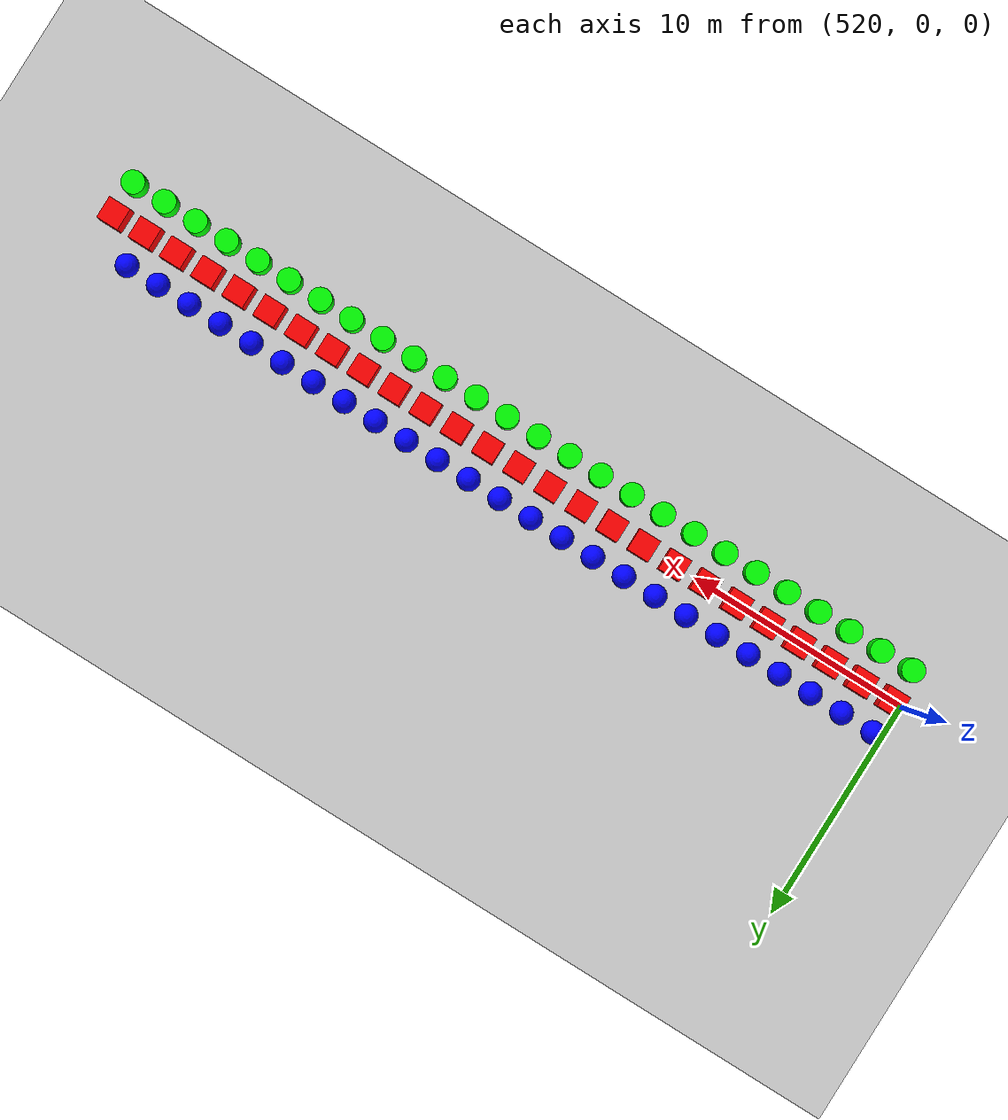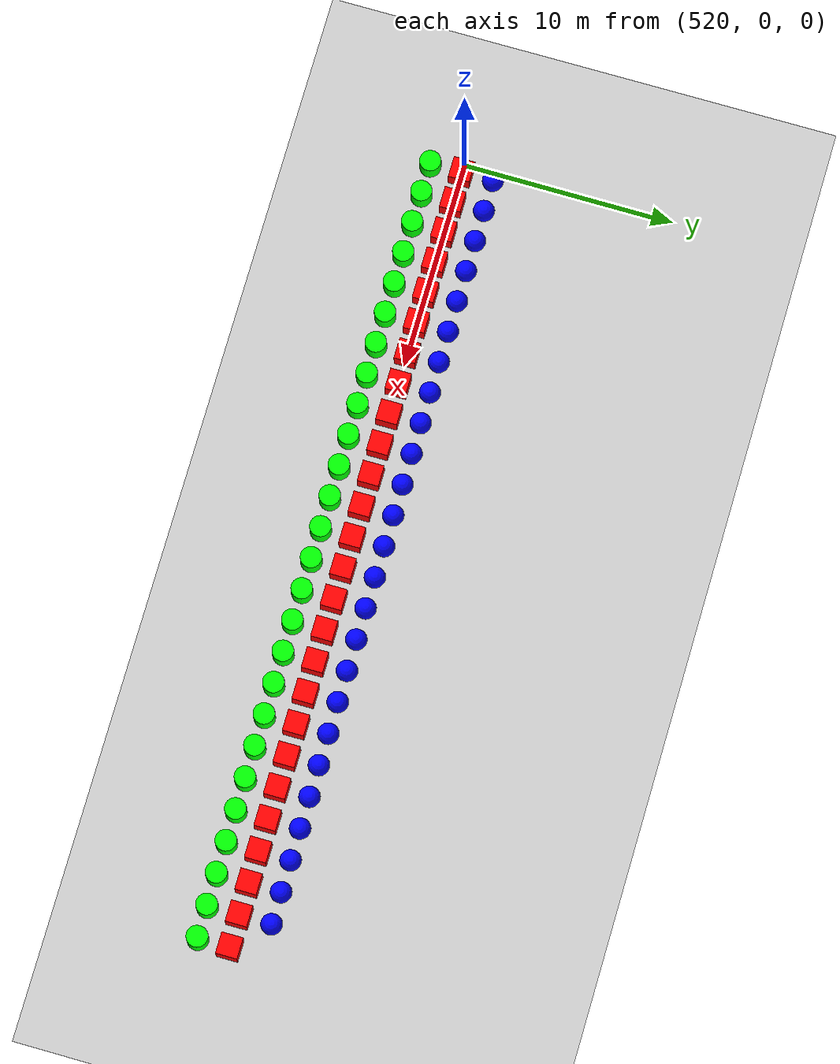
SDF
<sdf version="1.6">
 <world name="shapes">
  <model name="ground_plane">
   <static>true</static>
   <link name="link">
    <collision name="collision">
     <geometry><plane><normal>0 0 1</normal><size>100 100</size></plane></geometry>
    </collision>
    <visual name="visual">
     <geometry><plane><normal>0 0 1</normal><size>100 100</size></plane></geometry>
     <material>
      <ambient>0.8 0.8 0.8 1</ambient>
      <diffuse>0.8 0.8 0.8 1</diffuse>
      <specular>0.8 0.8 0.8 1</specular>
     </material>
    </visual>
   </link>
  </model>
  <model name="box_847">
   <static>false</static>
   <pose>520.5 0 0.5 0 0 0</pose>
   <link name="box_link">
    <inertial>
     <inertia><ixx>1</ixx><ixy>0</ixy><ixz>0</ixz><iyy>1</iyy><iyz>0</iyz><izz>1</izz></inertia>
     <mass>1.0</mass>
    </inertial>
    <collision name="box_collision"><geometry><box><size>1 1 1</size></box></geometry></collision>
    <visual name="box_visual">
     <geometry><box><size>1 1 1</size></box></geometry>
     <material><ambient>1 0 0 1</ambient><diffuse>1 0 0 1</diffuse><specular>1 0 0 1</specular></material>
    </visual>
   </link>
  </model>
  <model name="cylinder_847">
   <static>false</static>
   <pose>520.5 -1.5 0.5 0 0 0</pose>
   <link name="cylinder_link">
    <inertial>
     <inertia><ixx>2</ixx><ixy>0</ixy><ixz>0</ixz><iyy>2</iyy><iyz>0</iyz><izz>2</izz></inertia>
     <mass>2.0</mass>
    </inertial>
    <collision name="cylinder_collision">
     <geometry><cylinder><radius>0.5</radius><length>1.0</length></cylinder></geometry>
    </collision>
    <visual name="cylinder_visual">
     <geometry><cylinder><radius>0.5</radius><length>1.0</length></cylinder></geometry>
     <material><ambient>0 1 0 1</ambient><diffuse>0 1 0 1</diffuse><specular>0 1 0 1</specular></material>
    </visual>
   </link>
  </model>
  <model name="sphere_847">
   <static>false</static>
   <pose>520.5 1.5 0.5 0 0 0</pose>
   <link name="sphere_link">
    <inertial>
     <inertia><ixx>3</ixx><ixy>0</ixy><ixz>0</ixz><iyy>3</iyy><iyz>0</iyz><izz>3</izz></inertia>
     <mass>3.0</mass>
    </inertial>
    <collision name="sphere_collision"><geometry><sphere><radius>0.5</radius></sphere></geometry></collision>
    <visual name="sphere_visual">
     <geometry><sphere><radius>0.5</radius></sphere></geometry>
     <material><ambient>0 0 1 1</ambient><diffuse>0 0 1 1</diffuse><specular>0 0 1 1</specular></material>
    </visual>
   </link>
  </model>
  <model name="box_848">
   <static>false</static>
   <pose>522.0 0 0.5 0 0 0</pose>
   <link name="box_link">
    <inertial>
     <inertia><ixx>1</ixx><ixy>0</ixy><ixz>0</ixz><iyy>1</iyy><iyz>0</iyz><izz>1</izz></inertia>
     <mass>1.0</mass>
    </inertial>
    <collision name="box_collision"><geometry><box><size>1 1 1</size></box></geometry></collision>
    <visual name="box_visual">
     <geometry><box><size>1 1 1</size></box></geometry>
     <material><ambient>1 0 0 1</ambient><diffuse>1 0 0 1</diffuse><specular>1 0 0 1</specular></material>
    </visual>
   </link>
  </model>
  <model name="cylinder_848">
   <static>false</static>
   <pose>522.0 -1.5 0.5 0 0 0</pose>
   <link name="cylinder_link">
    <inertial>
     <inertia><ixx>2</ixx><ixy>0</ixy><ixz>0</ixz><iyy>2</iyy><iyz>0</iyz><izz>2</izz></inertia>
     <mass>2.0</mass>
    </inertial>
    <collision name="cylinder_collision">
     <geometry><cylinder><radius>0.5</radius><length>1.0</length></cylinder></geometry>
    </collision>
    <visual name="cylinder_visual">
     <geometry><cylinder><radius>0.5</radius><length>1.0</length></cylinder></geometry>
     <material><ambient>0 1 0 1</ambient><diffuse>0 1 0 1</diffuse><specular>0 1 0 1</specular></material>
    </visual>
   </link>
  </model>
  <model name="sphere_848">
   <static>false</static>
   <pose>522.0 1.5 0.5 0 0 0</pose>
   <link name="sphere_link">
    <inertial>
     <inertia><ixx>3</ixx><ixy>0</ixy><ixz>0</ixz><iyy>3</iyy><iyz>0</iyz><izz>3</izz></inertia>
     <mass>3.0</mass>
    </inertial>
    <collision name="sphere_collision"><geometry><sphere><radius>0.5</radius></sphere></geometry></collision>
    <visual name="sphere_visual">
     <geometry><sphere><radius>0.5</radius></sphere></geometry>
     <material><ambient>0 0 1 1</ambient><diffuse>0 0 1 1</diffuse><specular>0 0 1 1</specular></material>
    </visual>
   </link>
  </model>
  <model name="box_849">
   <static>false</static>
   <pose>523.5 0 0.5 0 0 0</pose>
   <link name="box_link">
    <inertial>
     <inertia><ixx>1</ixx><ixy>0</ixy><ixz>0</ixz><iyy>1</iyy><iyz>0</iyz><izz>1</izz></inertia>
     <mass>1.0</mass>
    </inertial>
    <collision name="box_collision"><geometry><box><size>1 1 1</size></box></geometry></collision>
    <visual name="box_visual">
     <geometry><box><size>1 1 1</size></box></geometry>
     <material><ambient>1 0 0 1</ambient><diffuse>1 0 0 1</diffuse><specular>1 0 0 1</specular></material>
    </visual>
   </link>
  </model>
  <model name="cylinder_849">
   <static>false</static>
   <pose>523.5 -1.5 0.5 0 0 0</pose>
   <link name="cylinder_link">
    <inertial>
     <inertia><ixx>2</ixx><ixy>0</ixy><ixz>0</ixz><iyy>2</iyy><iyz>0</iyz><izz>2</izz></inertia>
     <mass>2.0</mass>
    </inertial>
    <collision name="cylinder_collision">
     <geometry><cylinder><radius>0.5</radius><length>1.0</length></cylinder></geometry>
    </collision>
    <visual name="cylinder_visual">
     <geometry><cylinder><radius>0.5</radius><length>1.0</length></cylinder></geometry>
     <material><ambient>0 1 0 1</ambient><diffuse>0 1 0 1</diffuse><specular>0 1 0 1</specular></material>
    </visual>
   </link>
  </model>
  <model name="sphere_849">
   <static>false</static>
   <pose>523.5 1.5 0.5 0 0 0</pose>
   <link name="sphere_link">
    <inertial>
     <inertia><ixx>3</ixx><ixy>0</ixy><ixz>0</ixz><iyy>3</iyy><iyz>0</iyz><izz>3</izz></inertia>
     <mass>3.0</mass>
    </inertial>
    <collision name="sphere_collision"><geometry><sphere><radius>0.5</radius></sphere></geometry></collision>
    <visual name="sphere_visual">
     <geometry><sphere><radius>0.5</radius></sphere></geometry>
     <material><ambient>0 0 1 1</ambient><diffuse>0 0 1 1</diffuse><specular>0 0 1 1</specular></material>
    </visual>
   </link>
  </model>
  <model name="box_850">
   <static>false</static>
   <pose>525.0 0 0.5 0 0 0</pose>
   <link name="box_link">
    <inertial>
     <inertia><ixx>1</ixx><ixy>0</ixy><ixz>0</ixz><iyy>1</iyy><iyz>0</iyz><izz>1</izz></inertia>
     <mass>1.0</mass>
    </inertial>
    <collision name="box_collision"><geometry><box><size>1 1 1</size></box></geometry></collision>
    <visual name="box_visual">
     <geometry><box><size>1 1 1</size></box></geometry>
     <material><ambient>1 0 0 1</ambient><diffuse>1 0 0 1</diffuse><specular>1 0 0 1</specular></material>
    </visual>
   </link>
  </model>
  <model name="cylinder_850">
   <static>false</static>
   <pose>525.0 -1.5 0.5 0 0 0</pose>
   <link name="cylinder_link">
    <inertial>
     <inertia><ixx>2</ixx><ixy>0</ixy><ixz>0</ixz><iyy>2</iyy><iyz>0</iyz><izz>2</izz></inertia>
     <mass>2.0</mass>
    </inertial>
    <collision name="cylinder_collision">
     <geometry><cylinder><radius>0.5</radius><length>1.0</length></cylinder></geometry>
    </collision>
    <visual name="cylinder_visual">
     <geometry><cylinder><radius>0.5</radius><length>1.0</length></cylinder></geometry>
     <material><ambient>0 1 0 1</ambient><diffuse>0 1 0 1</diffuse><specular>0 1 0 1</specular></material>
    </visual>
   </link>
  </model>
  <model name="sphere_850">
   <static>false</static>
   <pose>525.0 1.5 0.5 0 0 0</pose>
   <link name="sphere_link">
    <inertial>
     <inertia><ixx>3</ixx><ixy>0</ixy><ixz>0</ixz><iyy>3</iyy><iyz>0</iyz><izz>3</izz></inertia>
     <mass>3.0</mass>
    </inertial>
    <collision name="sphere_collision"><geometry><sphere><radius>0.5</radius></sphere></geometry></collision>
    <visual name="sphere_visual">
     <geometry><sphere><radius>0.5</radius></sphere></geometry>
     <material><ambient>0 0 1 1</ambient><diffuse>0 0 1 1</diffuse><specular>0 0 1 1</specular></material>
    </visual>
   </link>
  </model>
  <model name="box_851">
   <static>false</static>
   <pose>526.5 0 0.5 0 0 0</pose>
   <link name="box_link">
    <inertial>
     <inertia><ixx>1</ixx><ixy>0</ixy><ixz>0</ixz><iyy>1</iyy><iyz>0</iyz><izz>1</izz></inertia>
     <mass>1.0</mass>
    </inertial>
    <collision name="box_collision"><geometry><box><size>1 1 1</size></box></geometry></collision>
    <visual name="box_visual">
     <geometry><box><size>1 1 1</size></box></geometry>
     <material><ambient>1 0 0 1</ambient><diffuse>1 0 0 1</diffuse><specular>1 0 0 1</specular></material>
    </visual>
   </link>
  </model>
  <model name="cylinder_851">
   <static>false</static>
   <pose>526.5 -1.5 0.5 0 0 0</pose>
   <link name="cylinder_link">
    <inertial>
     <inertia><ixx>2</ixx><ixy>0</ixy><ixz>0</ixz><iyy>2</iyy><iyz>0</iyz><izz>2</izz></inertia>
     <mass>2.0</mass>
    </inertial>
    <collision name="cylinder_collision">
     <geometry><cylinder><radius>0.5</radius><length>1.0</length></cylinder></geometry>
    </collision>
    <visual name="cylinder_visual">
     <geometry><cylinder><radius>0.5</radius><length>1.0</length></cylinder></geometry>
     <material><ambient>0 1 0 1</ambient><diffuse>0 1 0 1</diffuse><specular>0 1 0 1</specular></material>
    </visual>
   </link>
  </model>
  <model name="sphere_851">
   <static>false</static>
   <pose>526.5 1.5 0.5 0 0 0</pose>
   <link name="sphere_link">
    <inertial>
     <inertia><ixx>3</ixx><ixy>0</ixy><ixz>0</ixz><iyy>3</iyy><iyz>0</iyz><izz>3</izz></inertia>
     <mass>3.0</mass>
    </inertial>
    <collision name="sphere_collision"><geometry><sphere><radius>0.5</radius></sphere></geometry></collision>
    <visual name="sphere_visual">
     <geometry><sphere><radius>0.5</radius></sphere></geometry>
     <material><ambient>0 0 1 1</ambient><diffuse>0 0 1 1</diffuse><specular>0 0 1 1</specular></material>
    </visual>
   </link>
  </model>
  <model name="box_852">
   <static>false</static>
   <pose>528.0 0 0.5 0 0 0</pose>
   <link name="box_link">
    <inertial>
     <inertia><ixx>1</ixx><ixy>0</ixy><ixz>0</ixz><iyy>1</iyy><iyz>0</iyz><izz>1</izz></inertia>
     <mass>1.0</mass>
    </inertial>
    <collision name="box_collision"><geometry><box><size>1 1 1</size></box></geometry></collision>
    <visual name="box_visual">
     <geometry><box><size>1 1 1</size></box></geometry>
     <material><ambient>1 0 0 1</ambient><diffuse>1 0 0 1</diffuse><specular>1 0 0 1</specular></material>
    </visual>
   </link>
  </model>
  <model name="cylinder_852">
   <static>false</static>
   <pose>528.0 -1.5 0.5 0 0 0</pose>
   <link name="cylinder_link">
    <inertial>
     <inertia><ixx>2</ixx><ixy>0</ixy><ixz>0</ixz><iyy>2</iyy><iyz>0</iyz><izz>2</izz></inertia>
     <mass>2.0</mass>
    </inertial>
    <collision name="cylinder_collision">
     <geometry><cylinder><radius>0.5</radius><length>1.0</length></cylinder></geometry>
    </collision>
    <visual name="cylinder_visual">
     <geometry><cylinder><radius>0.5</radius><length>1.0</length></cylinder></geometry>
     <material><ambient>0 1 0 1</ambient><diffuse>0 1 0 1</diffuse><specular>0 1 0 1</specular></material>
    </visual>
   </link>
  </model>
  <model name="sphere_852">
   <static>false</static>
   <pose>528.0 1.5 0.5 0 0 0</pose>
   <link name="sphere_link">
    <inertial>
     <inertia><ixx>3</ixx><ixy>0</ixy><ixz>0</ixz><iyy>3</iyy><iyz>0</iyz><izz>3</izz></inertia>
     <mass>3.0</mass>
    </inertial>
    <collision name="sphere_collision"><geometry><sphere><radius>0.5</radius></sphere></geometry></collision>
    <visual name="sphere_visual">
     <geometry><sphere><radius>0.5</radius></sphere></geometry>
     <material><ambient>0 0 1 1</ambient><diffuse>0 0 1 1</diffuse><specular>0 0 1 1</specular></material>
    </visual>
   </link>
  </model>
  <model name="box_853">
   <static>false</static>
   <pose>529.5 0 0.5 0 0 0</pose>
   <link name="box_link">
    <inertial>
     <inertia><ixx>1</ixx><ixy>0</ixy><ixz>0</ixz><iyy>1</iyy><iyz>0</iyz><izz>1</izz></inertia>
     <mass>1.0</mass>
    </inertial>
    <collision name="box_collision"><geometry><box><size>1 1 1</size></box></geometry></collision>
    <visual name="box_visual">
     <geometry><box><size>1 1 1</size></box></geometry>
     <material><ambient>1 0 0 1</ambient><diffuse>1 0 0 1</diffuse><specular>1 0 0 1</specular></material>
    </visual>
   </link>
  </model>
  <model name="cylinder_853">
   <static>false</static>
   <pose>529.5 -1.5 0.5 0 0 0</pose>
   <link name="cylinder_link">
    <inertial>
     <inertia><ixx>2</ixx><ixy>0</ixy><ixz>0</ixz><iyy>2</iyy><iyz>0</iyz><izz>2</izz></inertia>
     <mass>2.0</mass>
    </inertial>
    <collision name="cylinder_collision">
     <geometry><cylinder><radius>0.5</radius><length>1.0</length></cylinder></geometry>
    </collision>
    <visual name="cylinder_visual">
     <geometry><cylinder><radius>0.5</radius><length>1.0</length></cylinder></geometry>
     <material><ambient>0 1 0 1</ambient><diffuse>0 1 0 1</diffuse><specular>0 1 0 1</specular></material>
    </visual>
   </link>
  </model>
  <model name="sphere_853">
   <static>false</static>
   <pose>529.5 1.5 0.5 0 0 0</pose>
   <link name="sphere_link">
    <inertial>
     <inertia><ixx>3</ixx><ixy>0</ixy><ixz>0</ixz><iyy>3</iyy><iyz>0</iyz><izz>3</izz></inertia>
     <mass>3.0</mass>
    </inertial>
    <collision name="sphere_collision"><geometry><sphere><radius>0.5</radius></sphere></geometry></collision>
    <visual name="sphere_visual">
     <geometry><sphere><radius>0.5</radius></sphere></geometry>
     <material><ambient>0 0 1 1</ambient><diffuse>0 0 1 1</diffuse><specular>0 0 1 1</specular></material>
    </visual>
   </link>
  </model>
  <model name="box_854">
   <static>false</static>
   <pose>531.0 0 0.5 0 0 0</pose>
   <link name="box_link">
    <inertial>
     <inertia><ixx>1</ixx><ixy>0</ixy><ixz>0</ixz><iyy>1</iyy><iyz>0</iyz><izz>1</izz></inertia>
     <mass>1.0</mass>
    </inertial>
    <collision name="box_collision"><geometry><box><size>1 1 1</size></box></geometry></collision>
    <visual name="box_visual">
     <geometry><box><size>1 1 1</size></box></geometry>
     <material><ambient>1 0 0 1</ambient><diffuse>1 0 0 1</diffuse><specular>1 0 0 1</specular></material>
    </visual>
   </link>
  </model>
  <model name="cylinder_854">
   <static>false</static>
   <pose>531.0 -1.5 0.5 0 0 0</pose>
   <link name="cylinder_link">
    <inertial>
     <inertia><ixx>2</ixx><ixy>0</ixy><ixz>0</ixz><iyy>2</iyy><iyz>0</iyz><izz>2</izz></inertia>
     <mass>2.0</mass>
    </inertial>
    <collision name="cylinder_collision">
     <geometry><cylinder><radius>0.5</radius><length>1.0</length></cylinder></geometry>
    </collision>
    <visual name="cylinder_visual">
     <geometry><cylinder><radius>0.5</radius><length>1.0</length></cylinder></geometry>
     <material><ambient>0 1 0 1</ambient><diffuse>0 1 0 1</diffuse><specular>0 1 0 1</specular></material>
    </visual>
   </link>
  </model>
  <model name="sphere_854">
   <static>false</static>
   <pose>531.0 1.5 0.5 0 0 0</pose>
   <link name="sphere_link">
    <inertial>
     <inertia><ixx>3</ixx><ixy>0</ixy><ixz>0</ixz><iyy>3</iyy><iyz>0</iyz><izz>3</izz></inertia>
     <mass>3.0</mass>
    </inertial>
    <collision name="sphere_collision"><geometry><sphere><radius>0.5</radius></sphere></geometry></collision>
    <visual name="sphere_visual">
     <geometry><sphere><radius>0.5</radius></sphere></geometry>
     <material><ambient>0 0 1 1</ambient><diffuse>0 0 1 1</diffuse><specular>0 0 1 1</specular></material>
    </visual>
   </link>
  </model>
  <model name="box_855">
   <static>false</static>
   <pose>532.5 0 0.5 0 0 0</pose>
   <link name="box_link">
    <inertial>
     <inertia><ixx>1</ixx><ixy>0</ixy><ixz>0</ixz><iyy>1</iyy><iyz>0</iyz><izz>1</izz></inertia>
     <mass>1.0</mass>
    </inertial>
    <collision name="box_collision"><geometry><box><size>1 1 1</size></box></geometry></collision>
    <visual name="box_visual">
     <geometry><box><size>1 1 1</size></box></geometry>
     <material><ambient>1 0 0 1</ambient><diffuse>1 0 0 1</diffuse><specular>1 0 0 1</specular></material>
    </visual>
   </link>
  </model>
  <model name="cylinder_855">
   <static>false</static>
   <pose>532.5 -1.5 0.5 0 0 0</pose>
   <link name="cylinder_link">
    <inertial>
     <inertia><ixx>2</ixx><ixy>0</ixy><ixz>0</ixz><iyy>2</iyy><iyz>0</iyz><izz>2</izz></inertia>
     <mass>2.0</mass>
    </inertial>
    <collision name="cylinder_collision">
     <geometry><cylinder><radius>0.5</radius><length>1.0</length></cylinder></geometry>
    </collision>
    <visual name="cylinder_visual">
     <geometry><cylinder><radius>0.5</radius><length>1.0</length></cylinder></geometry>
     <material><ambient>0 1 0 1</ambient><diffuse>0 1 0 1</diffuse><specular>0 1 0 1</specular></material>
    </visual>
   </link>
  </model>
  <model name="sphere_855">
   <static>false</static>
   <pose>532.5 1.5 0.5 0 0 0</pose>
   <link name="sphere_link">
    <inertial>
     <inertia><ixx>3</ixx><ixy>0</ixy><ixz>0</ixz><iyy>3</iyy><iyz>0</iyz><izz>3</izz></inertia>
     <mass>3.0</mass>
    </inertial>
    <collision name="sphere_collision"><geometry><sphere><radius>0.5</radius></sphere></geometry></collision>
    <visual name="sphere_visual">
     <geometry><sphere><radius>0.5</radius></sphere></geometry>
     <material><ambient>0 0 1 1</ambient><diffuse>0 0 1 1</diffuse><specular>0 0 1 1</specular></material>
    </visual>
   </link>
  </model>
  <model name="box_856">
   <static>false</static>
   <pose>534.0 0 0.5 0 0 0</pose>
   <link name="box_link">
    <inertial>
     <inertia><ixx>1</ixx><ixy>0</ixy><ixz>0</ixz><iyy>1</iyy><iyz>0</iyz><izz>1</izz></inertia>
     <mass>1.0</mass>
    </inertial>
    <collision name="box_collision"><geometry><box><size>1 1 1</size></box></geometry></collision>
    <visual name="box_visual">
     <geometry><box><size>1 1 1</size></box></geometry>
     <material><ambient>1 0 0 1</ambient><diffuse>1 0 0 1</diffuse><specular>1 0 0 1</specular></material>
    </visual>
   </link>
  </model>
  <model name="cylinder_856">
   <static>false</static>
   <pose>534.0 -1.5 0.5 0 0 0</pose>
   <link name="cylinder_link">
    <inertial>
     <inertia><ixx>2</ixx><ixy>0</ixy><ixz>0</ixz><iyy>2</iyy><iyz>0</iyz><izz>2</izz></inertia>
     <mass>2.0</mass>
    </inertial>
    <collision name="cylinder_collision">
     <geometry><cylinder><radius>0.5</radius><length>1.0</length></cylinder></geometry>
    </collision>
    <visual name="cylinder_visual">
     <geometry><cylinder><radius>0.5</radius><length>1.0</length></cylinder></geometry>
     <material><ambient>0 1 0 1</ambient><diffuse>0 1 0 1</diffuse><specular>0 1 0 1</specular></material>
    </visual>
   </link>
  </model>
  <model name="sphere_856">
   <static>false</static>
   <pose>534.0 1.5 0.5 0 0 0</pose>
   <link name="sphere_link">
    <inertial>
     <inertia><ixx>3</ixx><ixy>0</ixy><ixz>0</ixz><iyy>3</iyy><iyz>0</iyz><izz>3</izz></inertia>
     <mass>3.0</mass>
    </inertial>
    <collision name="sphere_collision"><geometry><sphere><radius>0.5</radius></sphere></geometry></collision>
    <visual name="sphere_visual">
     <geometry><sphere><radius>0.5</radius></sphere></geometry>
     <material><ambient>0 0 1 1</ambient><diffuse>0 0 1 1</diffuse><specular>0 0 1 1</specular></material>
    </visual>
   </link>
  </model>
  <model name="box_857">
   <static>false</static>
   <pose>535.5 0 0.5 0 0 0</pose>
   <link name="box_link">
    <inertial>
     <inertia><ixx>1</ixx><ixy>0</ixy><ixz>0</ixz><iyy>1</iyy><iyz>0</iyz><izz>1</izz></inertia>
     <mass>1.0</mass>
    </inertial>
    <collision name="box_collision"><geometry><box><size>1 1 1</size></box></geometry></collision>
    <visual name="box_visual">
     <geometry><box><size>1 1 1</size></box></geometry>
     <material><ambient>1 0 0 1</ambient><diffuse>1 0 0 1</diffuse><specular>1 0 0 1</specular></material>
    </visual>
   </link>
  </model>
  <model name="cylinder_857">
   <static>false</static>
   <pose>535.5 -1.5 0.5 0 0 0</pose>
   <link name="cylinder_link">
    <inertial>
     <inertia><ixx>2</ixx><ixy>0</ixy><ixz>0</ixz><iyy>2</iyy><iyz>0</iyz><izz>2</izz></inertia>
     <mass>2.0</mass>
    </inertial>
    <collision name="cylinder_collision">
     <geometry><cylinder><radius>0.5</radius><length>1.0</length></cylinder></geometry>
    </collision>
    <visual name="cylinder_visual">
     <geometry><cylinder><radius>0.5</radius><length>1.0</length></cylinder></geometry>
     <material><ambient>0 1 0 1</ambient><diffuse>0 1 0 1</diffuse><specular>0 1 0 1</specular></material>
    </visual>
   </link>
  </model>
  <model name="sphere_857">
   <static>false</static>
   <pose>535.5 1.5 0.5 0 0 0</pose>
   <link name="sphere_link">
    <inertial>
     <inertia><ixx>3</ixx><ixy>0</ixy><ixz>0</ixz><iyy>3</iyy><iyz>0</iyz><izz>3</izz></inertia>
     <mass>3.0</mass>
    </inertial>
    <collision name="sphere_collision"><geometry><sphere><radius>0.5</radius></sphere></geometry></collision>
    <visual name="sphere_visual">
     <geometry><sphere><radius>0.5</radius></sphere></geometry>
     <material><ambient>0 0 1 1</ambient><diffuse>0 0 1 1</diffuse><specular>0 0 1 1</specular></material>
    </visual>
   </link>
  </model>
  <model name="box_858">
   <static>false</static>
   <pose>537.0 0 0.5 0 0 0</pose>
   <link name="box_link">
    <inertial>
     <inertia><ixx>1</ixx><ixy>0</ixy><ixz>0</ixz><iyy>1</iyy><iyz>0</iyz><izz>1</izz></inertia>
     <mass>1.0</mass>
    </inertial>
    <collision name="box_collision"><geometry><box><size>1 1 1</size></box></geometry></collision>
    <visual name="box_visual">
     <geometry><box><size>1 1 1</size></box></geometry>
     <material><ambient>1 0 0 1</ambient><diffuse>1 0 0 1</diffuse><specular>1 0 0 1</specular></material>
    </visual>
   </link>
  </model>
  <model name="cylinder_858">
   <static>false</static>
   <pose>537.0 -1.5 0.5 0 0 0</pose>
   <link name="cylinder_link">
    <inertial>
     <inertia><ixx>2</ixx><ixy>0</ixy><ixz>0</ixz><iyy>2</iyy><iyz>0</iyz><izz>2</izz></inertia>
     <mass>2.0</mass>
    </inertial>
    <collision name="cylinder_collision">
     <geometry><cylinder><radius>0.5</radius><length>1.0</length></cylinder></geometry>
    </collision>
    <visual name="cylinder_visual">
     <geometry><cylinder><radius>0.5</radius><length>1.0</length></cylinder></geometry>
     <material><ambient>0 1 0 1</ambient><diffuse>0 1 0 1</diffuse><specular>0 1 0 1</specular></material>
    </visual>
   </link>
  </model>
  <model name="sphere_858">
   <static>false</static>
   <pose>537.0 1.5 0.5 0 0 0</pose>
   <link name="sphere_link">
    <inertial>
     <inertia><ixx>3</ixx><ixy>0</ixy><ixz>0</ixz><iyy>3</iyy><iyz>0</iyz><izz>3</izz></inertia>
     <mass>3.0</mass>
    </inertial>
    <collision name="sphere_collision"><geometry><sphere><radius>0.5</radius></sphere></geometry></collision>
    <visual name="sphere_visual">
     <geometry><sphere><radius>0.5</radius></sphere></geometry>
     <material><ambient>0 0 1 1</ambient><diffuse>0 0 1 1</diffuse><specular>0 0 1 1</specular></material>
    </visual>
   </link>
  </model>
  <model name="box_859">
   <static>false</static>
   <pose>538.5 0 0.5 0 0 0</pose>
   <link name="box_link">
    <inertial>
     <inertia><ixx>1</ixx><ixy>0</ixy><ixz>0</ixz><iyy>1</iyy><iyz>0</iyz><izz>1</izz></inertia>
     <mass>1.0</mass>
    </inertial>
    <collision name="box_collision"><geometry><box><size>1 1 1</size></box></geometry></collision>
    <visual name="box_visual">
     <geometry><box><size>1 1 1</size></box></geometry>
     <material><ambient>1 0 0 1</ambient><diffuse>1 0 0 1</diffuse><specular>1 0 0 1</specular></material>
    </visual>
   </link>
  </model>
  <model name="cylinder_859">
   <static>false</static>
   <pose>538.5 -1.5 0.5 0 0 0</pose>
   <link name="cylinder_link">
    <inertial>
     <inertia><ixx>2</ixx><ixy>0</ixy><ixz>0</ixz><iyy>2</iyy><iyz>0</iyz><izz>2</izz></inertia>
     <mass>2.0</mass>
    </inertial>
    <collision name="cylinder_collision">
     <geometry><cylinder><radius>0.5</radius><length>1.0</length></cylinder></geometry>
    </collision>
    <visual name="cylinder_visual">
     <geometry><cylinder><radius>0.5</radius><length>1.0</length></cylinder></geometry>
     <material><ambient>0 1 0 1</ambient><diffuse>0 1 0 1</diffuse><specular>0 1 0 1</specular></material>
    </visual>
   </link>
  </model>
  <model name="sphere_859">
   <static>false</static>
   <pose>538.5 1.5 0.5 0 0 0</pose>
   <link name="sphere_link">
    <inertial>
     <inertia><ixx>3</ixx><ixy>0</ixy><ixz>0</ixz><iyy>3</iyy><iyz>0</iyz><izz>3</izz></inertia>
     <mass>3.0</mass>
    </inertial>
    <collision name="sphere_collision"><geometry><sphere><radius>0.5</radius></sphere></geometry></collision>
    <visual name="sphere_visual">
     <geometry><sphere><radius>0.5</radius></sphere></geometry>
     <material><ambient>0 0 1 1</ambient><diffuse>0 0 1 1</diffuse><specular>0 0 1 1</specular></material>
    </visual>
   </link>
  </model>
  <model name="box_860">
   <static>false</static>
   <pose>540.0 0 0.5 0 0 0</pose>
   <link name="box_link">
    <inertial>
     <inertia><ixx>1</ixx><ixy>0</ixy><ixz>0</ixz><iyy>1</iyy><iyz>0</iyz><izz>1</izz></inertia>
     <mass>1.0</mass>
    </inertial>
    <collision name="box_collision"><geometry><box><size>1 1 1</size></box></geometry></collision>
    <visual name="box_visual">
     <geometry><box><size>1 1 1</size></box></geometry>
     <material><ambient>1 0 0 1</ambient><diffuse>1 0 0 1</diffuse><specular>1 0 0 1</specular></material>
    </visual>
   </link>
  </model>
  <model name="cylinder_860">
   <static>false</static>
   <pose>540.0 -1.5 0.5 0 0 0</pose>
   <link name="cylinder_link">
    <inertial>
     <inertia><ixx>2</ixx><ixy>0</ixy><ixz>0</ixz><iyy>2</iyy><iyz>0</iyz><izz>2</izz></inertia>
     <mass>2.0</mass>
    </inertial>
    <collision name="cylinder_collision">
     <geometry><cylinder><radius>0.5</radius><length>1.0</length></cylinder></geometry>
    </collision>
    <visual name="cylinder_visual">
     <geometry><cylinder><radius>0.5</radius><length>1.0</length></cylinder></geometry>
     <material><ambient>0 1 0 1</ambient><diffuse>0 1 0 1</diffuse><specular>0 1 0 1</specular></material>
    </visual>
   </link>
  </model>
  <model name="sphere_860">
   <static>false</static>
   <pose>540.0 1.5 0.5 0 0 0</pose>
   <link name="sphere_link">
    <inertial>
     <inertia><ixx>3</ixx><ixy>0</ixy><ixz>0</ixz><iyy>3</iyy><iyz>0</iyz><izz>3</izz></inertia>
     <mass>3.0</mass>
    </inertial>
    <collision name="sphere_collision"><geometry><sphere><radius>0.5</radius></sphere></geometry></collision>
    <visual name="sphere_visual">
     <geometry><sphere><radius>0.5</radius></sphere></geometry>
     <material><ambient>0 0 1 1</ambient><diffuse>0 0 1 1</diffuse><specular>0 0 1 1</specular></material>
    </visual>
   </link>
  </model>
  <model name="box_861">
   <static>false</static>
   <pose>541.5 0 0.5 0 0 0</pose>
   <link name="box_link">
    <inertial>
     <inertia><ixx>1</ixx><ixy>0</ixy><ixz>0</ixz><iyy>1</iyy><iyz>0</iyz><izz>1</izz></inertia>
     <mass>1.0</mass>
    </inertial>
    <collision name="box_collision"><geometry><box><size>1 1 1</size></box></geometry></collision>
    <visual name="box_visual">
     <geometry><box><size>1 1 1</size></box></geometry>
     <material><ambient>1 0 0 1</ambient><diffuse>1 0 0 1</diffuse><specular>1 0 0 1</specular></material>
    </visual>
   </link>
  </model>
  <model name="cylinder_861">
   <static>false</static>
   <pose>541.5 -1.5 0.5 0 0 0</pose>
   <link name="cylinder_link">
    <inertial>
     <inertia><ixx>2</ixx><ixy>0</ixy><ixz>0</ixz><iyy>2</iyy><iyz>0</iyz><izz>2</izz></inertia>
     <mass>2.0</mass>
    </inertial>
    <collision name="cylinder_collision">
     <geometry><cylinder><radius>0.5</radius><length>1.0</length></cylinder></geometry>
    </collision>
    <visual name="cylinder_visual">
     <geometry><cylinder><radius>0.5</radius><length>1.0</length></cylinder></geometry>
     <material><ambient>0 1 0 1</ambient><diffuse>0 1 0 1</diffuse><specular>0 1 0 1</specular></material>
    </visual>
   </link>
  </model>
  <model name="sphere_861">
   <static>false</static>
   <pose>541.5 1.5 0.5 0 0 0</pose>
   <link name="sphere_link">
    <inertial>
     <inertia><ixx>3</ixx><ixy>0</ixy><ixz>0</ixz><iyy>3</iyy><iyz>0</iyz><izz>3</izz></inertia>
     <mass>3.0</mass>
    </inertial>
    <collision name="sphere_collision"><geometry><sphere><radius>0.5</radius></sphere></geometry></collision>
    <visual name="sphere_visual">
     <geometry><sphere><radius>0.5</radius></sphere></geometry>
     <material><ambient>0 0 1 1</ambient><diffuse>0 0 1 1</diffuse><specular>0 0 1 1</specular></material>
    </visual>
   </link>
  </model>
  <model name="box_862">
   <static>false</static>
   <pose>543.0 0 0.5 0 0 0</pose>
   <link name="box_link">
    <inertial>
     <inertia><ixx>1</ixx><ixy>0</ixy><ixz>0</ixz><iyy>1</iyy><iyz>0</iyz><izz>1</izz></inertia>
     <mass>1.0</mass>
    </inertial>
    <collision name="box_collision"><geometry><box><size>1 1 1</size></box></geometry></collision>
    <visual name="box_visual">
     <geometry><box><size>1 1 1</size></box></geometry>
     <material><ambient>1 0 0 1</ambient><diffuse>1 0 0 1</diffuse><specular>1 0 0 1</specular></material>
    </visual>
   </link>
  </model>
  <model name="cylinder_862">
   <static>false</static>
   <pose>543.0 -1.5 0.5 0 0 0</pose>
   <link name="cylinder_link">
    <inertial>
     <inertia><ixx>2</ixx><ixy>0</ixy><ixz>0</ixz><iyy>2</iyy><iyz>0</iyz><izz>2</izz></inertia>
     <mass>2.0</mass>
    </inertial>
    <collision name="cylinder_collision">
     <geometry><cylinder><radius>0.5</radius><length>1.0</length></cylinder></geometry>
    </collision>
    <visual name="cylinder_visual">
     <geometry><cylinder><radius>0.5</radius><length>1.0</length></cylinder></geometry>
     <material><ambient>0 1 0 1</ambient><diffuse>0 1 0 1</diffuse><specular>0 1 0 1</specular></material>
    </visual>
   </link>
  </model>
  <model name="sphere_862">
   <static>false</static>
   <pose>543.0 1.5 0.5 0 0 0</pose>
   <link name="sphere_link">
    <inertial>
     <inertia><ixx>3</ixx><ixy>0</ixy><ixz>0</ixz><iyy>3</iyy><iyz>0</iyz><izz>3</izz></inertia>
     <mass>3.0</mass>
    </inertial>
    <collision name="sphere_collision"><geometry><sphere><radius>0.5</radius></sphere></geometry></collision>
    <visual name="sphere_visual">
     <geometry><sphere><radius>0.5</radius></sphere></geometry>
     <material><ambient>0 0 1 1</ambient><diffuse>0 0 1 1</diffuse><specular>0 0 1 1</specular></material>
    </visual>
   </link>
  </model>
  <model name="box_863">
   <static>false</static>
   <pose>544.5 0 0.5 0 0 0</pose>
   <link name="box_link">
    <inertial>
     <inertia><ixx>1</ixx><ixy>0</ixy><ixz>0</ixz><iyy>1</iyy><iyz>0</iyz><izz>1</izz></inertia>
     <mass>1.0</mass>
    </inertial>
    <collision name="box_collision"><geometry><box><size>1 1 1</size></box></geometry></collision>
    <visual name="box_visual">
     <geometry><box><size>1 1 1</size></box></geometry>
     <material><ambient>1 0 0 1</ambient><diffuse>1 0 0 1</diffuse><specular>1 0 0 1</specular></material>
    </visual>
   </link>
  </model>
  <model name="cylinder_863">
   <static>false</static>
   <pose>544.5 -1.5 0.5 0 0 0</pose>
   <link name="cylinder_link">
    <inertial>
     <inertia><ixx>2</ixx><ixy>0</ixy><ixz>0</ixz><iyy>2</iyy><iyz>0</iyz><izz>2</izz></inertia>
     <mass>2.0</mass>
    </inertial>
    <collision name="cylinder_collision">
     <geometry><cylinder><radius>0.5</radius><length>1.0</length></cylinder></geometry>
    </collision>
    <visual name="cylinder_visual">
     <geometry><cylinder><radius>0.5</radius><length>1.0</length></cylinder></geometry>
     <material><ambient>0 1 0 1</ambient><diffuse>0 1 0 1</diffuse><specular>0 1 0 1</specular></material>
    </visual>
   </link>
  </model>
  <model name="sphere_863">
   <static>false</static>
   <pose>544.5 1.5 0.5 0 0 0</pose>
   <link name="sphere_link">
    <inertial>
     <inertia><ixx>3</ixx><ixy>0</ixy><ixz>0</ixz><iyy>3</iyy><iyz>0</iyz><izz>3</izz></inertia>
     <mass>3.0</mass>
    </inertial>
    <collision name="sphere_collision"><geometry><sphere><radius>0.5</radius></sphere></geometry></collision>
    <visual name="sphere_visual">
     <geometry><sphere><radius>0.5</radius></sphere></geometry>
     <material><ambient>0 0 1 1</ambient><diffuse>0 0 1 1</diffuse><specular>0 0 1 1</specular></material>
    </visual>
   </link>
  </model>
  <model name="box_864">
   <static>false</static>
   <pose>546.0 0 0.5 0 0 0</pose>
   <link name="box_link">
    <inertial>
     <inertia><ixx>1</ixx><ixy>0</ixy><ixz>0</ixz><iyy>1</iyy><iyz>0</iyz><izz>1</izz></inertia>
     <mass>1.0</mass>
    </inertial>
    <collision name="box_collision"><geometry><box><size>1 1 1</size></box></geometry></collision>
    <visual name="box_visual">
     <geometry><box><size>1 1 1</size></box></geometry>
     <material><ambient>1 0 0 1</ambient><diffuse>1 0 0 1</diffuse><specular>1 0 0 1</specular></material>
    </visual>
   </link>
  </model>
  <model name="cylinder_864">
   <static>false</static>
   <pose>546.0 -1.5 0.5 0 0 0</pose>
   <link name="cylinder_link">
    <inertial>
     <inertia><ixx>2</ixx><ixy>0</ixy><ixz>0</ixz><iyy>2</iyy><iyz>0</iyz><izz>2</izz></inertia>
     <mass>2.0</mass>
    </inertial>
    <collision name="cylinder_collision">
     <geometry><cylinder><radius>0.5</radius><length>1.0</length></cylinder></geometry>
    </collision>
    <visual name="cylinder_visual">
     <geometry><cylinder><radius>0.5</radius><length>1.0</length></cylinder></geometry>
     <material><ambient>0 1 0 1</ambient><diffuse>0 1 0 1</diffuse><specular>0 1 0 1</specular></material>
    </visual>
   </link>
  </model>
  <model name="sphere_864">
   <static>false</static>
   <pose>546.0 1.5 0.5 0 0 0</pose>
   <link name="sphere_link">
    <inertial>
     <inertia><ixx>3</ixx><ixy>0</ixy><ixz>0</ixz><iyy>3</iyy><iyz>0</iyz><izz>3</izz></inertia>
     <mass>3.0</mass>
    </inertial>
    <collision name="sphere_collision"><geometry><sphere><radius>0.5</radius></sphere></geometry></collision>
    <visual name="sphere_visual">
     <geometry><sphere><radius>0.5</radius></sphere></geometry>
     <material><ambient>0 0 1 1</ambient><diffuse>0 0 1 1</diffuse><specular>0 0 1 1</specular></material>
    </visual>
   </link>
  </model>
  <model name="box_865">
   <static>false</static>
   <pose>547.5 0 0.5 0 0 0</pose>
   <link name="box_link">
    <inertial>
     <inertia><ixx>1</ixx><ixy>0</ixy><ixz>0</ixz><iyy>1</iyy><iyz>0</iyz><izz>1</izz></inertia>
     <mass>1.0</mass>
    </inertial>
    <collision name="box_collision"><geometry><box><size>1 1 1</size></box></geometry></collision>
    <visual name="box_visual">
     <geometry><box><size>1 1 1</size></box></geometry>
     <material><ambient>1 0 0 1</ambient><diffuse>1 0 0 1</diffuse><specular>1 0 0 1</specular></material>
    </visual>
   </link>
  </model>
  <model name="cylinder_865">
   <static>false</static>
   <pose>547.5 -1.5 0.5 0 0 0</pose>
   <link name="cylinder_link">
    <inertial>
     <inertia><ixx>2</ixx><ixy>0</ixy><ixz>0</ixz><iyy>2</iyy><iyz>0</iyz><izz>2</izz></inertia>
     <mass>2.0</mass>
    </inertial>
    <collision name="cylinder_collision">
     <geometry><cylinder><radius>0.5</radius><length>1.0</length></cylinder></geometry>
    </collision>
    <visual name="cylinder_visual">
     <geometry><cylinder><radius>0.5</radius><length>1.0</length></cylinder></geometry>
     <material><ambient>0 1 0 1</ambient><diffuse>0 1 0 1</diffuse><specular>0 1 0 1</specular></material>
    </visual>
   </link>
  </model>
  <model name="sphere_865">
   <static>false</static>
   <pose>547.5 1.5 0.5 0 0 0</pose>
   <link name="sphere_link">
    <inertial>
     <inertia><ixx>3</ixx><ixy>0</ixy><ixz>0</ixz><iyy>3</iyy><iyz>0</iyz><izz>3</izz></inertia>
     <mass>3.0</mass>
    </inertial>
    <collision name="sphere_collision"><geometry><sphere><radius>0.5</radius></sphere></geometry></collision>
    <visual name="sphere_visual">
     <geometry><sphere><radius>0.5</radius></sphere></geometry>
     <material><ambient>0 0 1 1</ambient><diffuse>0 0 1 1</diffuse><specular>0 0 1 1</specular></material>
    </visual>
   </link>
  </model>
  <model name="box_866">
   <static>false</static>
   <pose>549.0 0 0.5 0 0 0</pose>
   <link name="box_link">
    <inertial>
     <inertia><ixx>1</ixx><ixy>0</ixy><ixz>0</ixz><iyy>1</iyy><iyz>0</iyz><izz>1</izz></inertia>
     <mass>1.0</mass>
    </inertial>
    <collision name="box_collision"><geometry><box><size>1 1 1</size></box></geometry></collision>
    <visual name="box_visual">
     <geometry><box><size>1 1 1</size></box></geometry>
     <material><ambient>1 0 0 1</ambient><diffuse>1 0 0 1</diffuse><specular>1 0 0 1</specular></material>
    </visual>
   </link>
  </model>
  <model name="cylinder_866">
   <static>false</static>
   <pose>549.0 -1.5 0.5 0 0 0</pose>
   <link name="cylinder_link">
    <inertial>
     <inertia><ixx>2</ixx><ixy>0</ixy><ixz>0</ixz><iyy>2</iyy><iyz>0</iyz><izz>2</izz></inertia>
     <mass>2.0</mass>
    </inertial>
    <collision name="cylinder_collision">
     <geometry><cylinder><radius>0.5</radius><length>1.0</length></cylinder></geometry>
    </collision>
    <visual name="cylinder_visual">
     <geometry><cylinder><radius>0.5</radius><length>1.0</length></cylinder></geometry>
     <material><ambient>0 1 0 1</ambient><diffuse>0 1 0 1</diffuse><specular>0 1 0 1</specular></material>
    </visual>
   </link>
  </model>
  <model name="sphere_866">
   <static>false</static>
   <pose>549.0 1.5 0.5 0 0 0</pose>
   <link name="sphere_link">
    <inertial>
     <inertia><ixx>3</ixx><ixy>0</ixy><ixz>0</ixz><iyy>3</iyy><iyz>0</iyz><izz>3</izz></inertia>
     <mass>3.0</mass>
    </inertial>
    <collision name="sphere_collision"><geometry><sphere><radius>0.5</radius></sphere></geometry></collision>
    <visual name="sphere_visual">
     <geometry><sphere><radius>0.5</radius></sphere></geometry>
     <material><ambient>0 0 1 1</ambient><diffuse>0 0 1 1</diffuse><specular>0 0 1 1</specular></material>
    </visual>
   </link>
  </model>
  <model name="box_867">
   <static>false</static>
   <pose>550.5 0 0.5 0 0 0</pose>
   <link name="box_link">
    <inertial>
     <inertia><ixx>1</ixx><ixy>0</ixy><ixz>0</ixz><iyy>1</iyy><iyz>0</iyz><izz>1</izz></inertia>
     <mass>1.0</mass>
    </inertial>
    <collision name="box_collision"><geometry><box><size>1 1 1</size></box></geometry></collision>
    <visual name="box_visual">
     <geometry><box><size>1 1 1</size></box></geometry>
     <material><ambient>1 0 0 1</ambient><diffuse>1 0 0 1</diffuse><specular>1 0 0 1</specular></material>
    </visual>
   </link>
  </model>
  <model name="cylinder_867">
   <static>false</static>
   <pose>550.5 -1.5 0.5 0 0 0</pose>
   <link name="cylinder_link">
    <inertial>
     <inertia><ixx>2</ixx><ixy>0</ixy><ixz>0</ixz><iyy>2</iyy><iyz>0</iyz><izz>2</izz></inertia>
     <mass>2.0</mass>
    </inertial>
    <collision name="cylinder_collision">
     <geometry><cylinder><radius>0.5</radius><length>1.0</length></cylinder></geometry>
    </collision>
    <visual name="cylinder_visual">
     <geometry><cylinder><radius>0.5</radius><length>1.0</length></cylinder></geometry>
     <material><ambient>0 1 0 1</ambient><diffuse>0 1 0 1</diffuse><specular>0 1 0 1</specular></material>
    </visual>
   </link>
  </model>
  <model name="sphere_867">
   <static>false</static>
   <pose>550.5 1.5 0.5 0 0 0</pose>
   <link name="sphere_link">
    <inertial>
     <inertia><ixx>3</ixx><ixy>0</ixy><ixz>0</ixz><iyy>3</iyy><iyz>0</iyz><izz>3</izz></inertia>
     <mass>3.0</mass>
    </inertial>
    <collision name="sphere_collision"><geometry><sphere><radius>0.5</radius></sphere></geometry></collision>
    <visual name="sphere_visual">
     <geometry><sphere><radius>0.5</radius></sphere></geometry>
     <material><ambient>0 0 1 1</ambient><diffuse>0 0 1 1</diffuse><specular>0 0 1 1</specular></material>
    </visual>
   </link>
  </model>
  <model name="box_868">
   <static>false</static>
   <pose>552.0 0 0.5 0 0 0</pose>
   <link name="box_link">
    <inertial>
     <inertia><ixx>1</ixx><ixy>0</ixy><ixz>0</ixz><iyy>1</iyy><iyz>0</iyz><izz>1</izz></inertia>
     <mass>1.0</mass>
    </inertial>
    <collision name="box_collision"><geometry><box><size>1 1 1</size></box></geometry></collision>
    <visual name="box_visual">
     <geometry><box><size>1 1 1</size></box></geometry>
     <material><ambient>1 0 0 1</ambient><diffuse>1 0 0 1</diffuse><specular>1 0 0 1</specular></material>
    </visual>
   </link>
  </model>
  <model name="cylinder_868">
   <static>false</static>
   <pose>552.0 -1.5 0.5 0 0 0</pose>
   <link name="cylinder_link">
    <inertial>
     <inertia><ixx>2</ixx><ixy>0</ixy><ixz>0</ixz><iyy>2</iyy><iyz>0</iyz><izz>2</izz></inertia>
     <mass>2.0</mass>
    </inertial>
    <collision name="cylinder_collision">
     <geometry><cylinder><radius>0.5</radius><length>1.0</length></cylinder></geometry>
    </collision>
    <visual name="cylinder_visual">
     <geometry><cylinder><radius>0.5</radius><length>1.0</length></cylinder></geometry>
     <material><ambient>0 1 0 1</ambient><diffuse>0 1 0 1</diffuse><specular>0 1 0 1</specular></material>
    </visual>
   </link>
  </model>
  <model name="sphere_868">
   <static>false</static>
   <pose>552.0 1.5 0.5 0 0 0</pose>
   <link name="sphere_link">
    <inertial>
     <inertia><ixx>3</ixx><ixy>0</ixy><ixz>0</ixz><iyy>3</iyy><iyz>0</iyz><izz>3</izz></inertia>
     <mass>3.0</mass>
    </inertial>
    <collision name="sphere_collision"><geometry><sphere><radius>0.5</radius></sphere></geometry></collision>
    <visual name="sphere_visual">
     <geometry><sphere><radius>0.5</radius></sphere></geometry>
     <material><ambient>0 0 1 1</ambient><diffuse>0 0 1 1</diffuse><specular>0 0 1 1</specular></material>
    </visual>
   </link>
  </model>
  <model name="box_869">
   <static>false</static>
   <pose>553.5 0 0.5 0 0 0</pose>
   <link name="box_link">
    <inertial>
     <inertia><ixx>1</ixx><ixy>0</ixy><ixz>0</ixz><iyy>1</iyy><iyz>0</iyz><izz>1</izz></inertia>
     <mass>1.0</mass>
    </inertial>
    <collision name="box_collision"><geometry><box><size>1 1 1</size></box></geometry></collision>
    <visual name="box_visual">
     <geometry><box><size>1 1 1</size></box></geometry>
     <material><ambient>1 0 0 1</ambient><diffuse>1 0 0 1</diffuse><specular>1 0 0 1</specular></material>
    </visual>
   </link>
  </model>
  <model name="cylinder_869">
   <static>false</static>
   <pose>553.5 -1.5 0.5 0 0 0</pose>
   <link name="cylinder_link">
    <inertial>
     <inertia><ixx>2</ixx><ixy>0</ixy><ixz>0</ixz><iyy>2</iyy><iyz>0</iyz><izz>2</izz></inertia>
     <mass>2.0</mass>
    </inertial>
    <collision name="cylinder_collision">
     <geometry><cylinder><radius>0.5</radius><length>1.0</length></cylinder></geometry>
    </collision>
    <visual name="cylinder_visual">
     <geometry><cylinder><radius>0.5</radius><length>1.0</length></cylinder></geometry>
     <material><ambient>0 1 0 1</ambient><diffuse>0 1 0 1</diffuse><specular>0 1 0 1</specular></material>
    </visual>
   </link>
  </model>
  <model name="sphere_869">
   <static>false</static>
   <pose>553.5 1.5 0.5 0 0 0</pose>
   <link name="sphere_link">
    <inertial>
     <inertia><ixx>3</ixx><ixy>0</ixy><ixz>0</ixz><iyy>3</iyy><iyz>0</iyz><izz>3</izz></inertia>
     <mass>3.0</mass>
    </inertial>
    <collision name="sphere_collision"><geometry><sphere><radius>0.5</radius></sphere></geometry></collision>
    <visual name="sphere_visual">
     <geometry><sphere><radius>0.5</radius></sphere></geometry>
     <material><ambient>0 0 1 1</ambient><diffuse>0 0 1 1</diffuse><specular>0 0 1 1</specular></material>
    </visual>
   </link>
  </model>
  <model name="box_870">
   <static>false</static>
   <pose>555.0 0 0.5 0 0 0</pose>
   <link name="box_link">
    <inertial>
     <inertia><ixx>1</ixx><ixy>0</ixy><ixz>0</ixz><iyy>1</iyy><iyz>0</iyz><izz>1</izz></inertia>
     <mass>1.0</mass>
    </inertial>
    <collision name="box_collision"><geometry><box><size>1 1 1</size></box></geometry></collision>
    <visual name="box_visual">
     <geometry><box><size>1 1 1</size></box></geometry>
     <material><ambient>1 0 0 1</ambient><diffuse>1 0 0 1</diffuse><specular>1 0 0 1</specular></material>
    </visual>
   </link>
  </model>
  <model name="cylinder_870">
   <static>false</static>
   <pose>555.0 -1.5 0.5 0 0 0</pose>
   <link name="cylinder_link">
    <inertial>
     <inertia><ixx>2</ixx><ixy>0</ixy><ixz>0</ixz><iyy>2</iyy><iyz>0</iyz><izz>2</izz></inertia>
     <mass>2.0</mass>
    </inertial>
    <collision name="cylinder_collision">
     <geometry><cylinder><radius>0.5</radius><length>1.0</length></cylinder></geometry>
    </collision>
    <visual name="cylinder_visual">
     <geometry><cylinder><radius>0.5</radius><length>1.0</length></cylinder></geometry>
     <material><ambient>0 1 0 1</ambient><diffuse>0 1 0 1</diffuse><specular>0 1 0 1</specular></material>
    </visual>
   </link>
  </model>
  <model name="sphere_870">
   <static>false</static>
   <pose>555.0 1.5 0.5 0 0 0</pose>
   <link name="sphere_link">
    <inertial>
     <inertia><ixx>3</ixx><ixy>0</ixy><ixz>0</ixz><iyy>3</iyy><iyz>0</iyz><izz>3</izz></inertia>
     <mass>3.0</mass>
    </inertial>
    <collision name="sphere_collision"><geometry><sphere><radius>0.5</radius></sphere></geometry></collision>
    <visual name="sphere_visual">
     <geometry><sphere><radius>0.5</radius></sphere></geometry>
     <material><ambient>0 0 1 1</ambient><diffuse>0 0 1 1</diffuse><specular>0 0 1 1</specular></material>
    </visual>
   </link>
  </model>
  <model name="box_871">
   <static>false</static>
   <pose>556.5 0 0.5 0 0 0</pose>
   <link name="box_link">
    <inertial>
     <inertia><ixx>1</ixx><ixy>0</ixy><ixz>0</ixz><iyy>1</iyy><iyz>0</iyz><izz>1</izz></inertia>
     <mass>1.0</mass>
    </inertial>
    <collision name="box_collision"><geometry><box><size>1 1 1</size></box></geometry></collision>
    <visual name="box_visual">
     <geometry><box><size>1 1 1</size></box></geometry>
     <material><ambient>1 0 0 1</ambient><diffuse>1 0 0 1</diffuse><specular>1 0 0 1</specular></material>
    </visual>
   </link>
  </model>
  <model name="cylinder_871">
   <static>false</static>
   <pose>556.5 -1.5 0.5 0 0 0</pose>
   <link name="cylinder_link">
    <inertial>
     <inertia><ixx>2</ixx><ixy>0</ixy><ixz>0</ixz><iyy>2</iyy><iyz>0</iyz><izz>2</izz></inertia>
     <mass>2.0</mass>
    </inertial>
    <collision name="cylinder_collision">
     <geometry><cylinder><radius>0.5</radius><length>1.0</length></cylinder></geometry>
    </collision>
    <visual name="cylinder_visual">
     <geometry><cylinder><radius>0.5</radius><length>1.0</length></cylinder></geometry>
     <material><ambient>0 1 0 1</ambient><diffuse>0 1 0 1</diffuse><specular>0 1 0 1</specular></material>
    </visual>
   </link>
  </model>
  <model name="sphere_871">
   <static>false</static>
   <pose>556.5 1.5 0.5 0 0 0</pose>
   <link name="sphere_link">
    <inertial>
     <inertia><ixx>3</ixx><ixy>0</ixy><ixz>0</ixz><iyy>3</iyy><iyz>0</iyz><izz>3</izz></inertia>
     <mass>3.0</mass>
    </inertial>
    <collision name="sphere_collision"><geometry><sphere><radius>0.5</radius></sphere></geometry></collision>
    <visual name="sphere_visual">
     <geometry><sphere><radius>0.5</radius></sphere></geometry>
     <material><ambient>0 0 1 1</ambient><diffuse>0 0 1 1</diffuse><specular>0 0 1 1</specular></material>
    </visual>
   </link>
  </model>
  <model name="box_872">
   <static>false</static>
   <pose>558.0 0 0.5 0 0 0</pose>
   <link name="box_link">
    <inertial>
     <inertia><ixx>1</ixx><ixy>0</ixy><ixz>0</ixz><iyy>1</iyy><iyz>0</iyz><izz>1</izz></inertia>
     <mass>1.0</mass>
    </inertial>
    <collision name="box_collision"><geometry><box><size>1 1 1</size></box></geometry></collision>
    <visual name="box_visual">
     <geometry><box><size>1 1 1</size></box></geometry>
     <material><ambient>1 0 0 1</ambient><diffuse>1 0 0 1</diffuse><specular>1 0 0 1</specular></material>
    </visual>
   </link>
  </model>
  <model name="cylinder_872">
   <static>false</static>
   <pose>558.0 -1.5 0.5 0 0 0</pose>
   <link name="cylinder_link">
    <inertial>
     <inertia><ixx>2</ixx><ixy>0</ixy><ixz>0</ixz><iyy>2</iyy><iyz>0</iyz><izz>2</izz></inertia>
     <mass>2.0</mass>
    </inertial>
    <collision name="cylinder_collision">
     <geometry><cylinder><radius>0.5</radius><length>1.0</length></cylinder></geometry>
    </collision>
    <visual name="cylinder_visual">
     <geometry><cylinder><radius>0.5</radius><length>1.0</length></cylinder></geometry>
     <material><ambient>0 1 0 1</ambient><diffuse>0 1 0 1</diffuse><specular>0 1 0 1</specular></material>
    </visual>
   </link>
  </model>
 </world>
</sdf>
